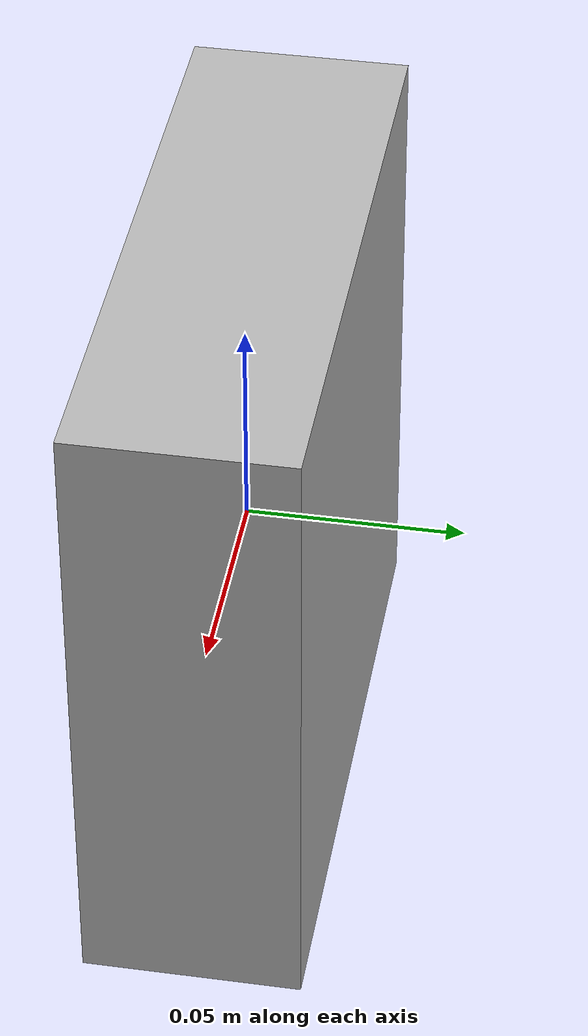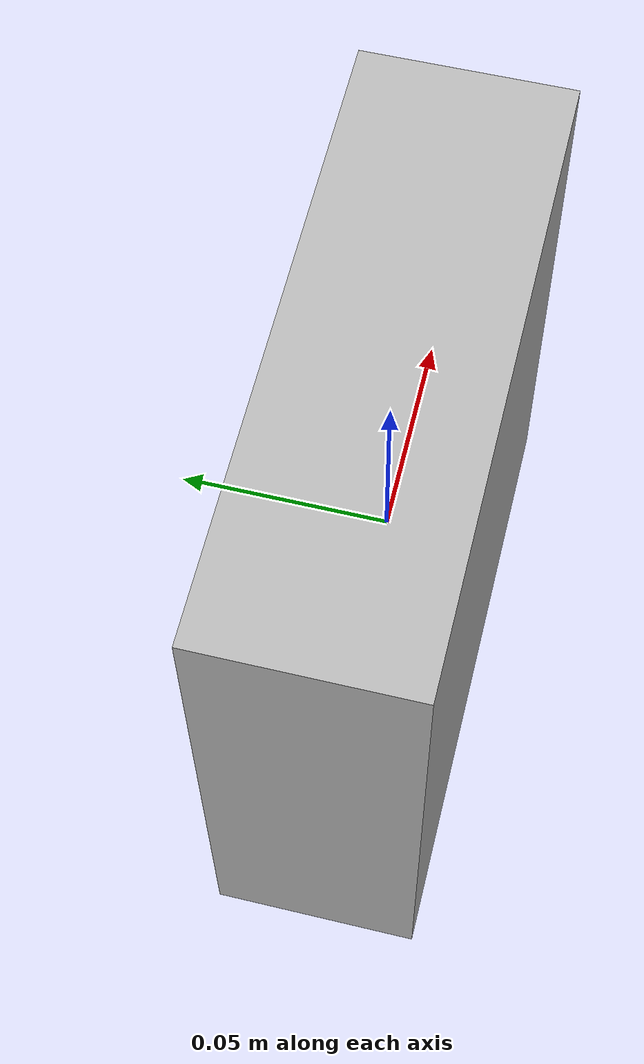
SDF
<?xml version ="1.0"?>
<sdf version="1.6">
  <model name="lab">
    <static>false</static>
    <link name="link">
      <collision name="colision1">
        <pose>0 0 0 0 0 0 </pose>
        <geometry>

          <mesh>
            <uri>model://eYIFI/meshes/eyifi.obj</uri>

          </mesh>
        </geometry>

      </collision>

      <visual name="visual1">
        <cast_shadows>false</cast_shadows>
	<pose> 0 0 0 0 0 0</pose>
        <geometry>
          <mesh>
            <uri>model://eYIFI/meshes/eyifi.obj</uri>

          </mesh>
        </geometry>
      </visual>

    </link>
  </model>
</sdf>
